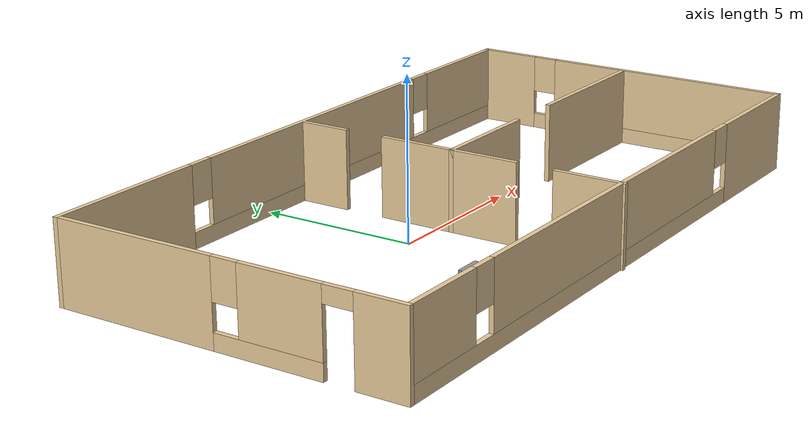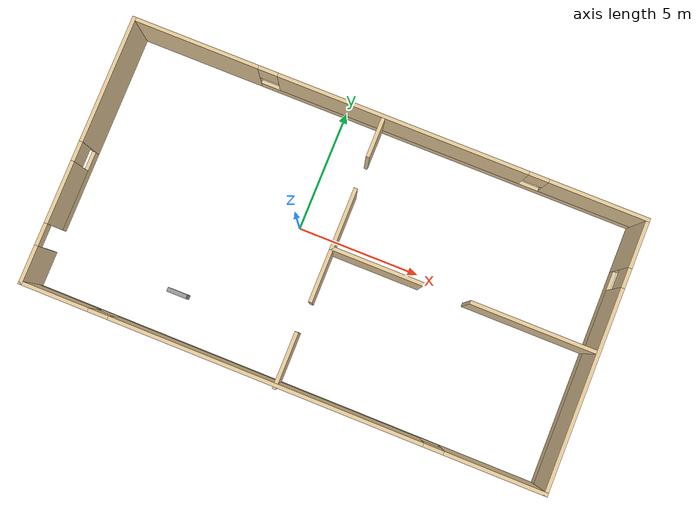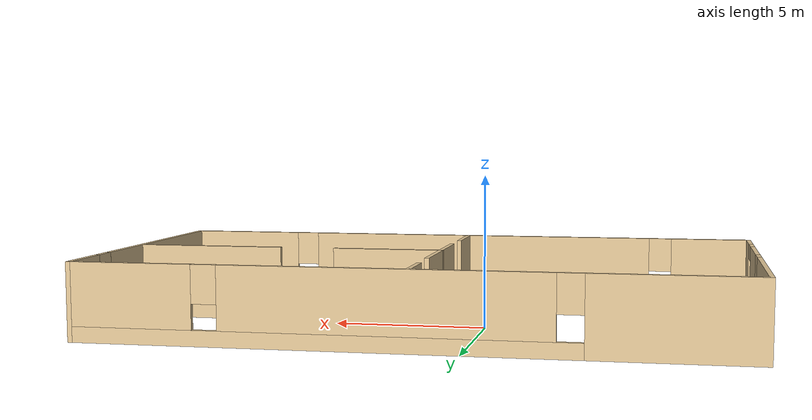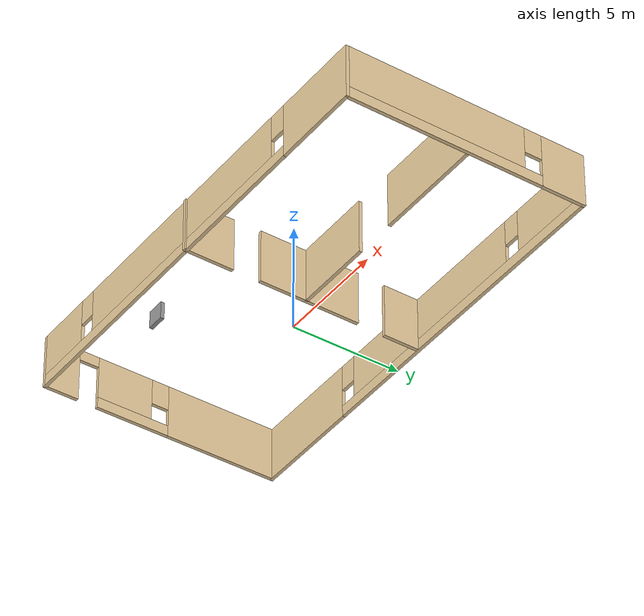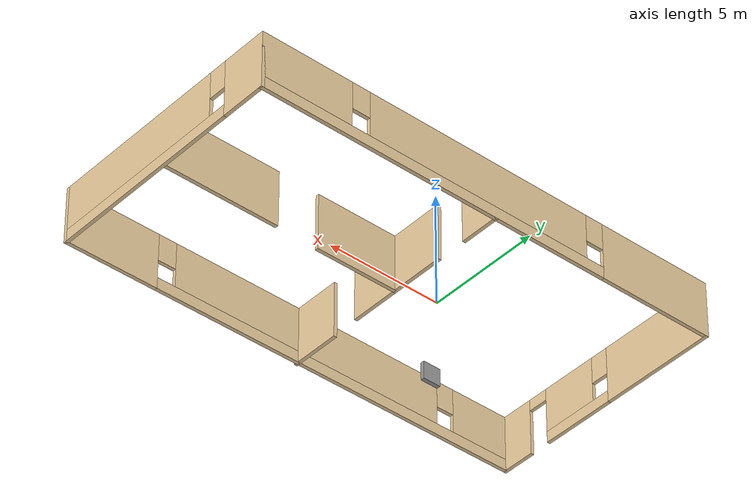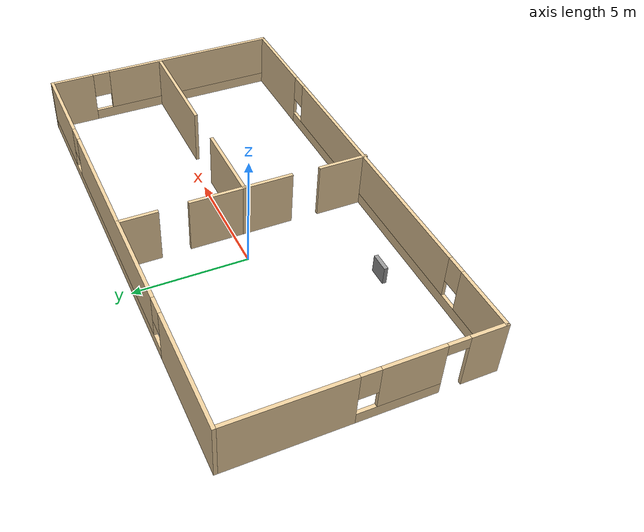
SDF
<?xml version='1.0'?>
<sdf version='1.7'>
  <model name='base-building'>
    <pose>1.71804 -0.568303 0 0 -0 0</pose>
    <link name='Wall_0'>
      <pose>-10.425 0.034868 0 0 -0 -1.5708</pose>
      <visual name='Wall_0_Visual_0'>
        <pose>-2.90241 0 1.25 0 -0 0</pose>
        <geometry>
          <box>
            <size>5.19517 0.15 2.5</size>
          </box>
        </geometry>
        <material>
          <script>
            <uri>file://media/materials/scripts/gazebo.material</uri>
            <name>Gazebo/Grey</name>
          </script>
          <ambient>0.921569 0.807843 0.615686 1</ambient>
        </material>
        <meta>
          <layer>0</layer>
        </meta>
      </visual>
      <collision name='Wall_0_Collision_0'>
        <geometry>
          <box>
            <size>5.19517 0.15 2.5</size>
          </box>
        </geometry>
        <pose>-2.90241 0 1.25 0 -0 0</pose>
      </collision>
      <visual name='Wall_0_Visual_1'>
        <pose>4.71817 0 1.25 0 -0 0</pose>
        <geometry>
          <box>
            <size>1.56366 0.15 2.5</size>
          </box>
        </geometry>
        <material>
          <script>
            <uri>file://media/materials/scripts/gazebo.material</uri>
            <name>Gazebo/Grey</name>
          </script>
          <ambient>0.921569 0.807843 0.615686 1</ambient>
        </material>
        <meta>
          <layer>0</layer>
        </meta>
      </visual>
      <collision name='Wall_0_Collision_1'>
        <geometry>
          <box>
            <size>1.56366 0.15 2.5</size>
          </box>
        </geometry>
        <pose>4.71817 0 1.25 0 -0 0</pose>
      </collision>
      <visual name='Wall_0_Visual_2'>
        <pose>1.36576 0 0.25 0 -0 0</pose>
        <geometry>
          <box>
            <size>3.34117 0.15 0.5</size>
          </box>
        </geometry>
        <material>
          <script>
            <uri>file://media/materials/scripts/gazebo.material</uri>
            <name>Gazebo/Grey</name>
          </script>
          <ambient>0.921569 0.807843 0.615686 1</ambient>
        </material>
        <meta>
          <layer>0</layer>
        </meta>
      </visual>
      <collision name='Wall_0_Collision_2'>
        <geometry>
          <box>
            <size>3.34117 0.15 0.5</size>
          </box>
        </geometry>
        <pose>1.36576 0 0.25 0 -0 0</pose>
      </collision>
      <visual name='Wall_0_Visual_3'>
        <pose>1.76576 0 1.5 0 -0 0</pose>
        <geometry>
          <box>
            <size>2.54117 0.15 2</size>
          </box>
        </geometry>
        <material>
          <script>
            <uri>file://media/materials/scripts/gazebo.material</uri>
            <name>Gazebo/Grey</name>
          </script>
          <ambient>0.921569 0.807843 0.615686 1</ambient>
        </material>
        <meta>
          <layer>0</layer>
        </meta>
      </visual>
      <collision name='Wall_0_Collision_3'>
        <geometry>
          <box>
            <size>2.54117 0.15 2</size>
          </box>
        </geometry>
        <pose>1.76576 0 1.5 0 -0 0</pose>
      </collision>
      <visual name='Wall_0_Visual_4'>
        <pose>0.095172 0 1.9 0 -0 0</pose>
        <geometry>
          <box>
            <size>0.8 0.15 1.2</size>
          </box>
        </geometry>
        <material>
          <script>
            <uri>file://media/materials/scripts/gazebo.material</uri>
            <name>Gazebo/Grey</name>
          </script>
          <ambient>0.921569 0.807843 0.615686 1</ambient>
        </material>
        <meta>
          <layer>0</layer>
        </meta>
      </visual>
      <collision name='Wall_0_Collision_4'>
        <geometry>
          <box>
            <size>0.8 0.15 1.2</size>
          </box>
        </geometry>
        <pose>0.095172 0 1.9 0 -0 0</pose>
      </collision>
      <visual name='Wall_0_Visual_5'>
        <pose>3.48634 0 2.25 0 -0 0</pose>
        <geometry>
          <box>
            <size>0.9 0.15 0.5</size>
          </box>
        </geometry>
        <material>
          <script>
            <uri>file://media/materials/scripts/gazebo.material</uri>
            <name>Gazebo/Grey</name>
          </script>
          <ambient>0.921569 0.807843 0.615686 1</ambient>
        </material>
        <meta>
          <layer>0</layer>
        </meta>
      </visual>
      <collision name='Wall_0_Collision_5'>
        <geometry>
          <box>
            <size>0.9 0.15 0.5</size>
          </box>
        </geometry>
        <pose>3.48634 0 2.25 0 -0 0</pose>
      </collision>
    </link>
    <link name='Wall_14'>
      <collision name='Wall_14_Collision'>
        <geometry>
          <box>
            <size>2.5 0.15 2.5</size>
          </box>
        </geometry>
        <pose>0 0 1.25 0 -0 0</pose>
      </collision>
      <visual name='Wall_14_Visual'>
        <pose>0 0 1.25 0 -0 0</pose>
        <geometry>
          <box>
            <size>2.5 0.15 2.5</size>
          </box>
        </geometry>
        <material>
          <script>
            <uri>file://media/materials/scripts/gazebo.material</uri>
            <name>Gazebo/Grey</name>
          </script>
          <ambient>0.921569 0.807843 0.615686 1</ambient>
        </material>
        <meta>
          <layer>0</layer>
        </meta>
      </visual>
      <pose>-0.162029 1.26797 0 0 -0 1.5708</pose>
    </link>
    <link name='Wall_2'>
      <pose>-0 5.45987 0 0 -0 0</pose>
      <visual name='Wall_2_Visual_0'>
        <pose>-7.90354 0 1.25 0 -0 0</pose>
        <geometry>
          <box>
            <size>5.19291 0.15 2.5</size>
          </box>
        </geometry>
        <material>
          <script>
            <uri>file://media/materials/scripts/gazebo.material</uri>
            <name>Gazebo/Grey</name>
          </script>
          <ambient>0.921569 0.807843 0.615686 1</ambient>
        </material>
        <meta>
          <layer>0</layer>
        </meta>
      </visual>
      <collision name='Wall_2_Collision_0'>
        <geometry>
          <box>
            <size>5.19291 0.15 2.5</size>
          </box>
        </geometry>
        <pose>-7.90354 0 1.25 0 -0 0</pose>
      </collision>
      <visual name='Wall_2_Visual_1'>
        <pose>2.59646 0 0.25 0 -0 0</pose>
        <geometry>
          <box>
            <size>15.8071 0.15 0.5</size>
          </box>
        </geometry>
        <material>
          <script>
            <uri>file://media/materials/scripts/gazebo.material</uri>
            <name>Gazebo/Grey</name>
          </script>
          <ambient>0.921569 0.807843 0.615686 1</ambient>
        </material>
        <meta>
          <layer>0</layer>
        </meta>
      </visual>
      <collision name='Wall_2_Collision_1'>
        <geometry>
          <box>
            <size>15.8071 0.15 0.5</size>
          </box>
        </geometry>
        <pose>2.59646 0 0.25 0 -0 0</pose>
      </collision>
      <visual name='Wall_2_Visual_2'>
        <pose>0.582734 0 1.5 0 -0 0</pose>
        <geometry>
          <box>
            <size>10.1796 0.15 2</size>
          </box>
        </geometry>
        <material>
          <script>
            <uri>file://media/materials/scripts/gazebo.material</uri>
            <name>Gazebo/Grey</name>
          </script>
          <ambient>0.921569 0.807843 0.615686 1</ambient>
        </material>
        <meta>
          <layer>0</layer>
        </meta>
      </visual>
      <collision name='Wall_2_Collision_2'>
        <geometry>
          <box>
            <size>10.1796 0.15 2</size>
          </box>
        </geometry>
        <pose>0.582734 0 1.5 0 -0 0</pose>
      </collision>
      <visual name='Wall_2_Visual_3'>
        <pose>8.48628 0 1.5 0 -0 0</pose>
        <geometry>
          <box>
            <size>4.02744 0.15 2</size>
          </box>
        </geometry>
        <material>
          <script>
            <uri>file://media/materials/scripts/gazebo.material</uri>
            <name>Gazebo/Grey</name>
          </script>
          <ambient>0.921569 0.807843 0.615686 1</ambient>
        </material>
        <meta>
          <layer>0</layer>
        </meta>
      </visual>
      <collision name='Wall_2_Collision_3'>
        <geometry>
          <box>
            <size>4.02744 0.15 2</size>
          </box>
        </geometry>
        <pose>8.48628 0 1.5 0 -0 0</pose>
      </collision>
      <visual name='Wall_2_Visual_4'>
        <pose>-4.90709 0 1.9 0 -0 0</pose>
        <geometry>
          <box>
            <size>0.8 0.15 1.2</size>
          </box>
        </geometry>
        <material>
          <script>
            <uri>file://media/materials/scripts/gazebo.material</uri>
            <name>Gazebo/Grey</name>
          </script>
          <ambient>0.921569 0.807843 0.615686 1</ambient>
        </material>
        <meta>
          <layer>0</layer>
        </meta>
      </visual>
      <collision name='Wall_2_Collision_4'>
        <geometry>
          <box>
            <size>0.8 0.15 1.2</size>
          </box>
        </geometry>
        <pose>-4.90709 0 1.9 0 -0 0</pose>
      </collision>
      <visual name='Wall_2_Visual_5'>
        <pose>6.07256 0 1.9 0 -0 0</pose>
        <geometry>
          <box>
            <size>0.8 0.15 1.2</size>
          </box>
        </geometry>
        <material>
          <script>
            <uri>file://media/materials/scripts/gazebo.material</uri>
            <name>Gazebo/Grey</name>
          </script>
          <ambient>0.921569 0.807843 0.615686 1</ambient>
        </material>
        <meta>
          <layer>0</layer>
        </meta>
      </visual>
      <collision name='Wall_2_Collision_5'>
        <geometry>
          <box>
            <size>0.8 0.15 1.2</size>
          </box>
        </geometry>
        <pose>6.07256 0 1.9 0 -0 0</pose>
      </collision>
    </link>
    <link name='Wall_21'>
      <collision name='Wall_21_Collision'>
        <geometry>
          <box>
            <size>1.75 0.15 2.5</size>
          </box>
        </geometry>
        <pose>0 0 1.25 0 -0 0</pose>
      </collision>
      <visual name='Wall_21_Visual'>
        <pose>0 0 1.25 0 -0 0</pose>
        <geometry>
          <box>
            <size>1.75 0.15 2.5</size>
          </box>
        </geometry>
        <material>
          <script>
            <uri>file://media/materials/scripts/gazebo.material</uri>
            <name>Gazebo/Grey</name>
          </script>
          <ambient>0.921569 0.807843 0.615686 1</ambient>
        </material>
        <meta>
          <layer>0</layer>
        </meta>
      </visual>
      <pose>-0.184877 4.65523 0 0 -0 1.5708</pose>
    </link>
    <link name='Wall_23'>
      <collision name='Wall_23_Collision'>
        <geometry>
          <box>
            <size>2.25 0.15 2.5</size>
          </box>
        </geometry>
        <pose>0 0 1.25 0 -0 0</pose>
      </collision>
      <visual name='Wall_23_Visual'>
        <pose>0 0 1.25 0 -0 0</pose>
        <geometry>
          <box>
            <size>2.25 0.15 2.5</size>
          </box>
        </geometry>
        <material>
          <script>
            <uri>file://media/materials/scripts/gazebo.material</uri>
            <name>Gazebo/Grey</name>
          </script>
          <ambient>0.921569 0.807843 0.615686 1</ambient>
        </material>
        <meta>
          <layer>0</layer>
        </meta>
      </visual>
      <pose>-0.162029 -0.957035 0 0 -0 -1.5708</pose>
    </link>
    <link name='Wall_25'>
      <collision name='Wall_25_Collision'>
        <geometry>
          <box>
            <size>2.25 0.15 2.5</size>
          </box>
        </geometry>
        <pose>0 0 1.25 0 -0 0</pose>
      </collision>
      <visual name='Wall_25_Visual'>
        <pose>0 0 1.25 0 -0 0</pose>
        <geometry>
          <box>
            <size>2.25 0.15 2.5</size>
          </box>
        </geometry>
        <material>
          <script>
            <uri>file://media/materials/scripts/gazebo.material</uri>
            <name>Gazebo/Grey</name>
          </script>
          <ambient>0.921569 0.807843 0.615686 1</ambient>
        </material>
        <meta>
          <layer>0</layer>
        </meta>
      </visual>
      <pose>-0.208689 -4.40987 0 0 -0 -1.5708</pose>
    </link>
    <link name='Wall_27'>
      <collision name='Wall_27_Collision'>
        <geometry>
          <box>
            <size>3.75 0.15 2.5</size>
          </box>
        </geometry>
        <pose>0 0 1.25 0 -0 0</pose>
      </collision>
      <visual name='Wall_27_Visual'>
        <pose>0 0 1.25 0 -0 0</pose>
        <geometry>
          <box>
            <size>3.75 0.15 2.5</size>
          </box>
        </geometry>
        <material>
          <script>
            <uri>file://media/materials/scripts/gazebo.material</uri>
            <name>Gazebo/Grey</name>
          </script>
          <ambient>0.921569 0.807843 0.615686 1</ambient>
        </material>
        <meta>
          <layer>0</layer>
        </meta>
      </visual>
      <pose>1.63797 0.092965 0 0 -0 0</pose>
    </link>
    <link name='Wall_29'>
      <collision name='Wall_29_Collision'>
        <geometry>
          <box>
            <size>5 0.15 2.5</size>
          </box>
        </geometry>
        <pose>0 0 1.25 0 -0 0</pose>
      </collision>
      <visual name='Wall_29_Visual'>
        <pose>0 0 1.25 0 -0 0</pose>
        <geometry>
          <box>
            <size>5 0.15 2.5</size>
          </box>
        </geometry>
        <material>
          <script>
            <uri>file://media/materials/scripts/gazebo.material</uri>
            <name>Gazebo/Grey</name>
          </script>
          <ambient>0.921569 0.807843 0.615686 1</ambient>
        </material>
        <meta>
          <layer>0</layer>
        </meta>
      </visual>
      <pose>7.85555 0.124758 0 0 -0 0</pose>
    </link>
    <link name='Wall_4'>
      <pose>10.425 0.034868 0 0 -0 -1.5708</pose>
      <visual name='Wall_4_Visual_0'>
        <pose>-4.48677 0 1.25 0 -0 0</pose>
        <geometry>
          <box>
            <size>2.02647 0.15 2.5</size>
          </box>
        </geometry>
        <material>
          <script>
            <uri>file://media/materials/scripts/gazebo.material</uri>
            <name>Gazebo/Grey</name>
          </script>
          <ambient>0.921569 0.807843 0.615686 1</ambient>
        </material>
        <meta>
          <layer>0</layer>
        </meta>
      </visual>
      <collision name='Wall_4_Collision_0'>
        <geometry>
          <box>
            <size>2.02647 0.15 2.5</size>
          </box>
        </geometry>
        <pose>-4.48677 0 1.25 0 -0 0</pose>
      </collision>
      <visual name='Wall_4_Visual_1'>
        <pose>1.01324 0 0.25 0 -0 0</pose>
        <geometry>
          <box>
            <size>8.97353 0.15 0.5</size>
          </box>
        </geometry>
        <material>
          <script>
            <uri>file://media/materials/scripts/gazebo.material</uri>
            <name>Gazebo/Grey</name>
          </script>
          <ambient>0.921569 0.807843 0.615686 1</ambient>
        </material>
        <meta>
          <layer>0</layer>
        </meta>
      </visual>
      <collision name='Wall_4_Collision_1'>
        <geometry>
          <box>
            <size>8.97353 0.15 0.5</size>
          </box>
        </geometry>
        <pose>1.01324 0 0.25 0 -0 0</pose>
      </collision>
      <visual name='Wall_4_Visual_2'>
        <pose>1.41324 0 1.5 0 -0 0</pose>
        <geometry>
          <box>
            <size>8.17353 0.15 2</size>
          </box>
        </geometry>
        <material>
          <script>
            <uri>file://media/materials/scripts/gazebo.material</uri>
            <name>Gazebo/Grey</name>
          </script>
          <ambient>0.921569 0.807843 0.615686 1</ambient>
        </material>
        <meta>
          <layer>0</layer>
        </meta>
      </visual>
      <collision name='Wall_4_Collision_2'>
        <geometry>
          <box>
            <size>8.17353 0.15 2</size>
          </box>
        </geometry>
        <pose>1.41324 0 1.5 0 -0 0</pose>
      </collision>
      <visual name='Wall_4_Visual_3'>
        <pose>-3.07353 0 1.9 0 -0 0</pose>
        <geometry>
          <box>
            <size>0.8 0.15 1.2</size>
          </box>
        </geometry>
        <material>
          <script>
            <uri>file://media/materials/scripts/gazebo.material</uri>
            <name>Gazebo/Grey</name>
          </script>
          <ambient>0.921569 0.807843 0.615686 1</ambient>
        </material>
        <meta>
          <layer>0</layer>
        </meta>
      </visual>
      <collision name='Wall_4_Collision_3'>
        <geometry>
          <box>
            <size>0.8 0.15 1.2</size>
          </box>
        </geometry>
        <pose>-3.07353 0 1.9 0 -0 0</pose>
      </collision>
    </link>
    <link name='Wall_5'>
      <pose>-0 -5.39013 0 0 -0 3.14159</pose>
      <visual name='Wall_5_Visual_0'>
        <pose>-8.46302 0 1.25 0 -0 0</pose>
        <geometry>
          <box>
            <size>4.07397 0.15 2.5</size>
          </box>
        </geometry>
        <material>
          <script>
            <uri>file://media/materials/scripts/gazebo.material</uri>
            <name>Gazebo/Grey</name>
          </script>
          <ambient>0.921569 0.807843 0.615686 1</ambient>
        </material>
        <meta>
          <layer>0</layer>
        </meta>
      </visual>
      <collision name='Wall_5_Collision_0'>
        <geometry>
          <box>
            <size>4.07397 0.15 2.5</size>
          </box>
        </geometry>
        <pose>-8.46302 0 1.25 0 -0 0</pose>
      </collision>
      <visual name='Wall_5_Visual_1'>
        <pose>2.03698 0 0.25 0 -0 0</pose>
        <geometry>
          <box>
            <size>16.926 0.15 0.5</size>
          </box>
        </geometry>
        <material>
          <script>
            <uri>file://media/materials/scripts/gazebo.material</uri>
            <name>Gazebo/Grey</name>
          </script>
          <ambient>0.921569 0.807843 0.615686 1</ambient>
        </material>
        <meta>
          <layer>0</layer>
        </meta>
      </visual>
      <collision name='Wall_5_Collision_1'>
        <geometry>
          <box>
            <size>16.926 0.15 0.5</size>
          </box>
        </geometry>
        <pose>2.03698 0 0.25 0 -0 0</pose>
      </collision>
      <visual name='Wall_5_Visual_2'>
        <pose>0.636393 0 1.5 0 -0 0</pose>
        <geometry>
          <box>
            <size>12.5249 0.15 2</size>
          </box>
        </geometry>
        <material>
          <script>
            <uri>file://media/materials/scripts/gazebo.material</uri>
            <name>Gazebo/Grey</name>
          </script>
          <ambient>0.921569 0.807843 0.615686 1</ambient>
        </material>
        <meta>
          <layer>0</layer>
        </meta>
      </visual>
      <collision name='Wall_5_Collision_2'>
        <geometry>
          <box>
            <size>12.5249 0.15 2</size>
          </box>
        </geometry>
        <pose>0.636393 0 1.5 0 -0 0</pose>
      </collision>
      <visual name='Wall_5_Visual_3'>
        <pose>9.09941 0 1.5 0 -0 0</pose>
        <geometry>
          <box>
            <size>2.80118 0.15 2</size>
          </box>
        </geometry>
        <material>
          <script>
            <uri>file://media/materials/scripts/gazebo.material</uri>
            <name>Gazebo/Grey</name>
          </script>
          <ambient>0.921569 0.807843 0.615686 1</ambient>
        </material>
        <meta>
          <layer>0</layer>
        </meta>
      </visual>
      <collision name='Wall_5_Collision_3'>
        <geometry>
          <box>
            <size>2.80118 0.15 2</size>
          </box>
        </geometry>
        <pose>9.09941 0 1.5 0 -0 0</pose>
      </collision>
      <visual name='Wall_5_Visual_4'>
        <pose>-6.02603 0 1.9 0 -0 0</pose>
        <geometry>
          <box>
            <size>0.8 0.15 1.2</size>
          </box>
        </geometry>
        <material>
          <script>
            <uri>file://media/materials/scripts/gazebo.material</uri>
            <name>Gazebo/Grey</name>
          </script>
          <ambient>0.921569 0.807843 0.615686 1</ambient>
        </material>
        <meta>
          <layer>0</layer>
        </meta>
      </visual>
      <collision name='Wall_5_Collision_4'>
        <geometry>
          <box>
            <size>0.8 0.15 1.2</size>
          </box>
        </geometry>
        <pose>-6.02603 0 1.9 0 -0 0</pose>
      </collision>
      <visual name='Wall_5_Visual_5'>
        <pose>7.29882 0 1.9 0 -0 0</pose>
        <geometry>
          <box>
            <size>0.8 0.15 1.2</size>
          </box>
        </geometry>
        <material>
          <script>
            <uri>file://media/materials/scripts/gazebo.material</uri>
            <name>Gazebo/Grey</name>
          </script>
          <ambient>0.921569 0.807843 0.615686 1</ambient>
        </material>
        <meta>
          <layer>0</layer>
        </meta>
      </visual>
      <collision name='Wall_5_Collision_5'>
        <geometry>
          <box>
            <size>0.8 0.15 1.2</size>
          </box>
        </geometry>
        <pose>7.29882 0 1.9 0 -0 0</pose>
      </collision>
    </link>
    <link name='Window_3'>
      <collision name='Window_3_Collision'>
        <geometry>
          <box>
            <size>0.8 0.17 0.8</size>
          </box>
        </geometry>
        <pose>0 0 0.4 0 -0 0</pose>
      </collision>
      <visual name='Window_3_Visual'>
        <pose>0 0 0.4 0 -0 0</pose>
        <geometry>
          <box>
            <size>0.8 0.17 0.8</size>
          </box>
        </geometry>
        <material>
          <script>
            <uri>file://media/materials/scripts/gazebo.material</uri>
            <name>Gazebo/Grey</name>
          </script>
        </material>
      </visual>
      <pose>-5.08217 -3.60843 0.5 0 -0 0</pose>
    </link>
    <static>1</static>
  </model>
</sdf>
